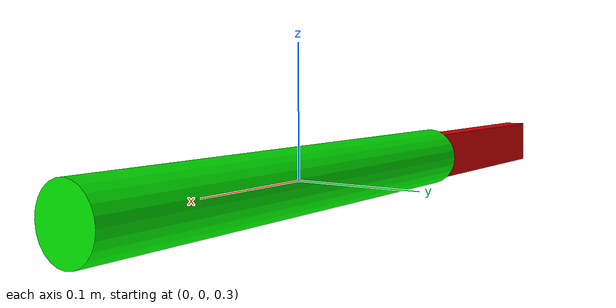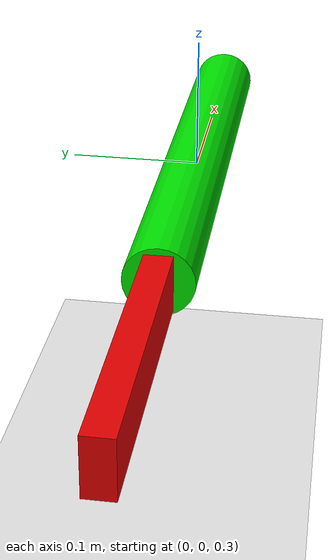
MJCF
<mujoco>
	<option gravity="0 0 -9" viscosity="0.1" wind="0 20 0" />
  <worldbody>
    <light diffuse=".5 .5 .5" pos="0 0 7" dir="0 0 -1"/>
    <geom type="plane" size="1 1 0.1" rgba=".9 0.9 0.9 1"/>
    <body pos="0 0 0.3" euler="0 90 0">
      <joint type="hinge" pos="0 0 0.2" range="5 6" limited="true"/>
      <geom type="cylinder" size="0.025 0.2" rgba="0 .9 0 1" mass="2"/>
			<body pos="0 0 -0.3" euler="0 0 0">
        <joint type="hinge" pos="0 0 0.1" axis="1 0 0" limited="true" range="0 30" damping="0.1"
               stiffness="0.01"/>
        <joint type="hinge" pos="0 0 0.1" axis="0 1 0" damping="0.1" limited="true" range="0 15"/>
				<geom type="box" size="0.02 0.01 0.1" rgba="0.9 0 0 1" mass="2"/>
			</body>
    </body>
  </worldbody>
</mujoco>
